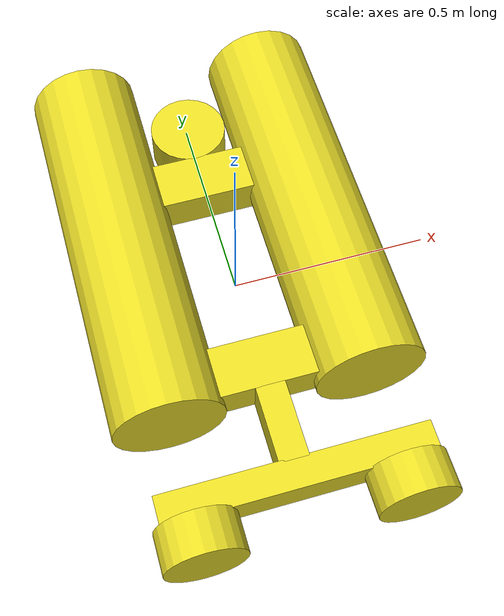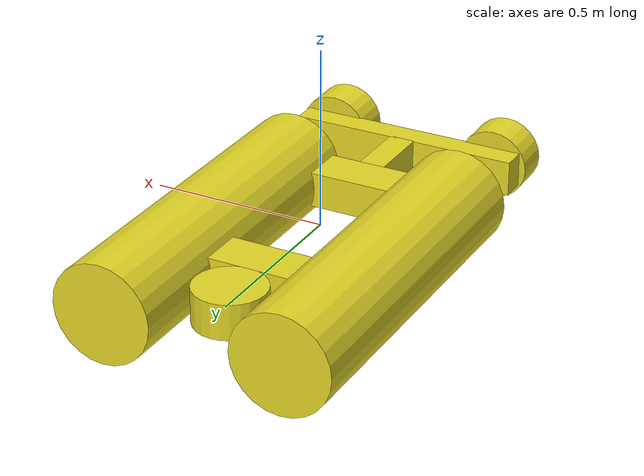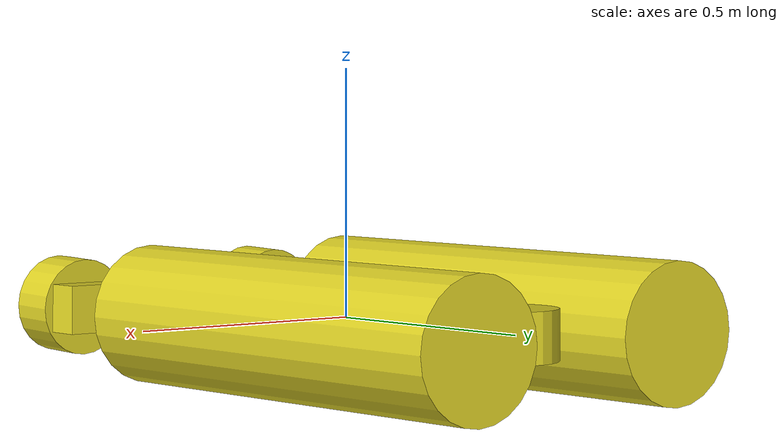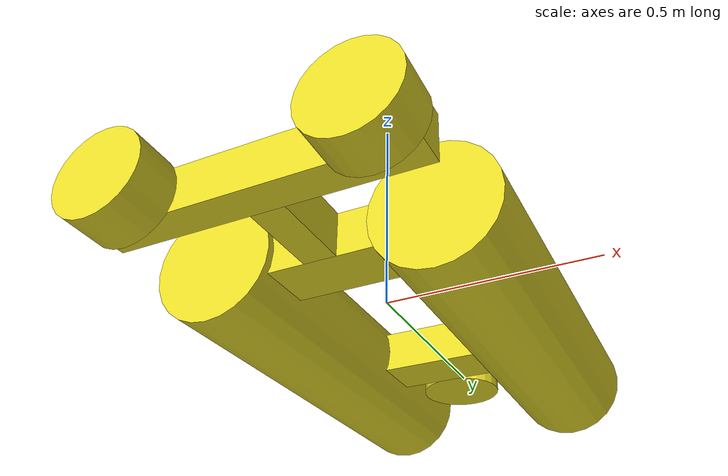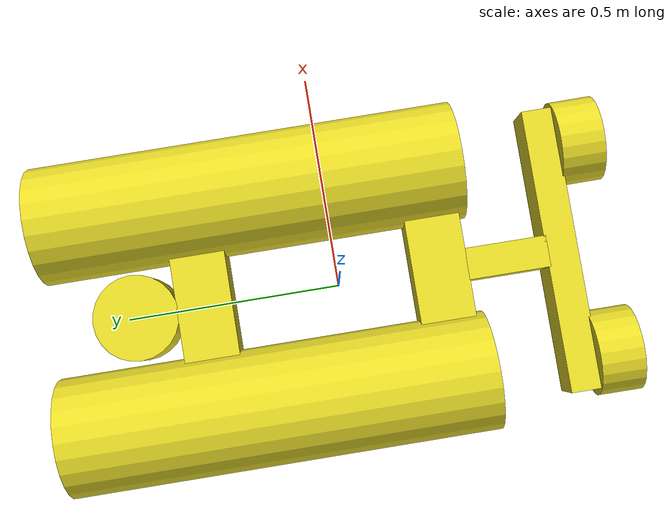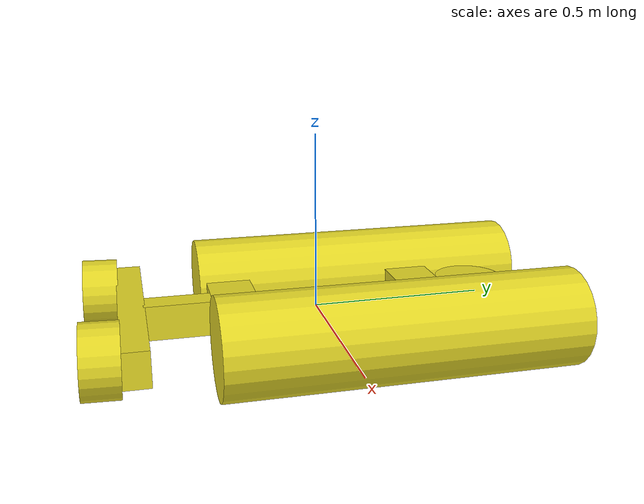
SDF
<?xml version='1.0'?>
<sdf version='1.7'>
  <model name='AUV_mk4'>
    <link name='link_0'>
      <inertial>
        <mass>61.5752</mass>
        <inertia>
          <ixx>5.43299</ixx>
          <ixy>0</ixy>
          <ixz>0</ixz>
          <iyy>5.43299</iyy>
          <iyz>0</iyz>
          <izz>0.603437</izz>
        </inertia>
        <pose>0 0 0 0 -0 0</pose>
      </inertial>
      <pose>0.251383 0.178692 0 1.57 -0 0</pose>
      <gravity>1</gravity>
      <self_collide>0</self_collide>
      <kinematic>0</kinematic>
      <enable_wind>0</enable_wind>
      <visual name='visual'>
        <pose>0 0 0 0 -0 0</pose>
        <geometry>
          <cylinder>
            <radius>0.14</radius>
            <length>1</length>
          </cylinder>
        </geometry>
        <material>
          <script>
            <uri>file://media/materials/scripts/gazebo.material</uri>
            <name>Gazebo/Yellow</name>
          </script>
          <shader type='pixel'>
            <normal_map>__default__</normal_map>
          </shader>
          <ambient>1 1 0 1</ambient>
          <diffuse>1 1 0 1</diffuse>
          <emissive>0 0 0 1</emissive>
        </material>
        <transparency>0</transparency>
        <cast_shadows>1</cast_shadows>
      </visual>
      <collision name='collision'>
        <laser_retro>0</laser_retro>
        <max_contacts>10</max_contacts>
        <pose>0 0 0 0 -0 0</pose>
        <geometry>
          <cylinder>
            <radius>0.14</radius>
            <length>1</length>
          </cylinder>
        </geometry>
        <surface>
          <friction>
            <ode>
              <mu>1</mu>
              <mu2>1</mu2>
              <fdir1>0 0 0</fdir1>
              <slip1>0</slip1>
              <slip2>0</slip2>
            </ode>
            <torsional>
              <coefficient>1</coefficient>
              <patch_radius>0</patch_radius>
              <surface_radius>0</surface_radius>
              <use_patch_radius>1</use_patch_radius>
              <ode>
                <slip>0</slip>
              </ode>
            </torsional>
          </friction>
          <bounce>
            <restitution_coefficient>0</restitution_coefficient>
            <threshold>1e+06</threshold>
          </bounce>
          <contact>
            <collide_without_contact>0</collide_without_contact>
            <collide_without_contact_bitmask>1</collide_without_contact_bitmask>
            <collide_bitmask>1</collide_bitmask>
            <ode>
              <soft_cfm>0</soft_cfm>
              <soft_erp>0.2</soft_erp>
              <kp>1e+13</kp>
              <kd>1</kd>
              <max_vel>0.01</max_vel>
              <min_depth>0</min_depth>
            </ode>
            <bullet>
              <split_impulse>1</split_impulse>
              <split_impulse_penetration_threshold>-0.01</split_impulse_penetration_threshold>
              <soft_cfm>0</soft_cfm>
              <soft_erp>0.2</soft_erp>
              <kp>1e+13</kp>
              <kd>1</kd>
            </bullet>
          </contact>
        </surface>
      </collision>
    </link>
    <link name='link_1'>
      <inertial>
        <mass>61.5752</mass>
        <inertia>
          <ixx>5.43299</ixx>
          <ixy>0</ixy>
          <ixz>0</ixz>
          <iyy>5.43299</iyy>
          <iyz>0</iyz>
          <izz>0.603437</izz>
        </inertia>
        <pose>0 0 0 0 -0 0</pose>
      </inertial>
      <pose>-0.251383 0.178692 0 1.57 -0 0</pose>
      <gravity>1</gravity>
      <self_collide>0</self_collide>
      <kinematic>0</kinematic>
      <enable_wind>0</enable_wind>
      <visual name='visual'>
        <pose>0 0 0 0 -0 0</pose>
        <geometry>
          <cylinder>
            <radius>0.14</radius>
            <length>1</length>
          </cylinder>
        </geometry>
        <material>
          <script>
            <uri>file://media/materials/scripts/gazebo.material</uri>
            <name>Gazebo/Yellow</name>
          </script>
          <shader type='pixel'>
            <normal_map>__default__</normal_map>
          </shader>
          <ambient>1 1 0 1</ambient>
          <diffuse>1 1 0 1</diffuse>
          <emissive>0 0 0 1</emissive>
        </material>
        <transparency>0</transparency>
        <cast_shadows>1</cast_shadows>
      </visual>
      <collision name='collision'>
        <laser_retro>0</laser_retro>
        <max_contacts>10</max_contacts>
        <pose>0 0 0 0 -0 0</pose>
        <geometry>
          <cylinder>
            <radius>0.14</radius>
            <length>1</length>
          </cylinder>
        </geometry>
        <surface>
          <friction>
            <ode>
              <mu>1</mu>
              <mu2>1</mu2>
              <fdir1>0 0 0</fdir1>
              <slip1>0</slip1>
              <slip2>0</slip2>
            </ode>
            <torsional>
              <coefficient>1</coefficient>
              <patch_radius>0</patch_radius>
              <surface_radius>0</surface_radius>
              <use_patch_radius>1</use_patch_radius>
              <ode>
                <slip>0</slip>
              </ode>
            </torsional>
          </friction>
          <bounce>
            <restitution_coefficient>0</restitution_coefficient>
            <threshold>1e+06</threshold>
          </bounce>
          <contact>
            <collide_without_contact>0</collide_without_contact>
            <collide_without_contact_bitmask>1</collide_without_contact_bitmask>
            <collide_bitmask>1</collide_bitmask>
            <ode>
              <soft_cfm>0</soft_cfm>
              <soft_erp>0.2</soft_erp>
              <kp>1e+13</kp>
              <kd>1</kd>
              <max_vel>0.01</max_vel>
              <min_depth>0</min_depth>
            </ode>
            <bullet>
              <split_impulse>1</split_impulse>
              <split_impulse_penetration_threshold>-0.01</split_impulse_penetration_threshold>
              <soft_cfm>0</soft_cfm>
              <soft_erp>0.2</soft_erp>
              <kp>1e+13</kp>
              <kd>1</kd>
            </bullet>
          </contact>
        </surface>
      </collision>
    </link>
    <link name='link_2'>
      <inertial>
        <mass>3.2227</mass>
        <inertia>
          <ixx>0.00714829</ixx>
          <ixy>0</ixy>
          <ixz>0</ixz>
          <iyy>0.0194705</iyy>
          <iyz>0</iyz>
          <izz>0.0212476</izz>
        </inertia>
        <pose>0 0 0 0 -0 0</pose>
      </inertial>
      <pose>0 0.314978 0 0 -0 0</pose>
      <gravity>1</gravity>
      <self_collide>0</self_collide>
      <kinematic>0</kinematic>
      <enable_wind>0</enable_wind>
      <visual name='visual'>
        <pose>0 0 0 0 -0 0</pose>
        <geometry>
          <box>
            <size>0.25 0.128908 0.1</size>
          </box>
        </geometry>
        <material>
          <script>
            <uri>file://media/materials/scripts/gazebo.material</uri>
            <name>Gazebo/Yellow</name>
          </script>
          <shader type='pixel'>
            <normal_map>__default__</normal_map>
          </shader>
          <ambient>1 1 0 1</ambient>
          <diffuse>1 1 0 1</diffuse>
          <emissive>0 0 0 1</emissive>
        </material>
        <transparency>0</transparency>
        <cast_shadows>1</cast_shadows>
      </visual>
      <collision name='collision'>
        <laser_retro>0</laser_retro>
        <max_contacts>10</max_contacts>
        <pose>0 0 0 0 -0 0</pose>
        <geometry>
          <box>
            <size>0.25 0.128908 0.1</size>
          </box>
        </geometry>
        <surface>
          <friction>
            <ode>
              <mu>1</mu>
              <mu2>1</mu2>
              <fdir1>0 0 0</fdir1>
              <slip1>0</slip1>
              <slip2>0</slip2>
            </ode>
            <torsional>
              <coefficient>1</coefficient>
              <patch_radius>0</patch_radius>
              <surface_radius>0</surface_radius>
              <use_patch_radius>1</use_patch_radius>
              <ode>
                <slip>0</slip>
              </ode>
            </torsional>
          </friction>
          <bounce>
            <restitution_coefficient>0</restitution_coefficient>
            <threshold>1e+06</threshold>
          </bounce>
          <contact>
            <collide_without_contact>0</collide_without_contact>
            <collide_without_contact_bitmask>1</collide_without_contact_bitmask>
            <collide_bitmask>1</collide_bitmask>
            <ode>
              <soft_cfm>0</soft_cfm>
              <soft_erp>0.2</soft_erp>
              <kp>1e+13</kp>
              <kd>1</kd>
              <max_vel>0.01</max_vel>
              <min_depth>0</min_depth>
            </ode>
            <bullet>
              <split_impulse>1</split_impulse>
              <split_impulse_penetration_threshold>-0.01</split_impulse_penetration_threshold>
              <soft_cfm>0</soft_cfm>
              <soft_erp>0.2</soft_erp>
              <kp>1e+13</kp>
              <kd>1</kd>
            </bullet>
          </contact>
        </surface>
      </collision>
    </link>
    <link name='link_3'>
      <inertial>
        <mass>3.14159</mass>
        <inertia>
          <ixx>0.010472</ixx>
          <ixy>0</ixy>
          <ixz>0</ixz>
          <iyy>0.010472</iyy>
          <iyz>0</iyz>
          <izz>0.015708</izz>
        </inertia>
        <pose>0 0 0 0 -0 0</pose>
      </inertial>
      <pose>0 0.475723 0 0 -0 0</pose>
      <gravity>1</gravity>
      <self_collide>0</self_collide>
      <kinematic>0</kinematic>
      <enable_wind>0</enable_wind>
      <visual name='visual'>
        <pose>0 0 0 0 -0 0</pose>
        <geometry>
          <cylinder>
            <radius>0.1</radius>
            <length>0.1</length>
          </cylinder>
        </geometry>
        <material>
          <script>
            <uri>file://media/materials/scripts/gazebo.material</uri>
            <name>Gazebo/Yellow</name>
          </script>
          <shader type='pixel'>
            <normal_map>__default__</normal_map>
          </shader>
          <ambient>1 1 0 1</ambient>
          <diffuse>1 1 0 1</diffuse>
          <emissive>0 0 0 1</emissive>
        </material>
        <transparency>0</transparency>
        <cast_shadows>1</cast_shadows>
      </visual>
      <collision name='collision'>
        <laser_retro>0</laser_retro>
        <max_contacts>10</max_contacts>
        <pose>0 0 0 0 -0 0</pose>
        <geometry>
          <cylinder>
            <radius>0.1</radius>
            <length>0.1</length>
          </cylinder>
        </geometry>
        <surface>
          <friction>
            <ode>
              <mu>1</mu>
              <mu2>1</mu2>
              <fdir1>0 0 0</fdir1>
              <slip1>0</slip1>
              <slip2>0</slip2>
            </ode>
            <torsional>
              <coefficient>1</coefficient>
              <patch_radius>0</patch_radius>
              <surface_radius>0</surface_radius>
              <use_patch_radius>1</use_patch_radius>
              <ode>
                <slip>0</slip>
              </ode>
            </torsional>
          </friction>
          <bounce>
            <restitution_coefficient>0</restitution_coefficient>
            <threshold>1e+06</threshold>
          </bounce>
          <contact>
            <collide_without_contact>0</collide_without_contact>
            <collide_without_contact_bitmask>1</collide_without_contact_bitmask>
            <collide_bitmask>1</collide_bitmask>
            <ode>
              <soft_cfm>0</soft_cfm>
              <soft_erp>0.2</soft_erp>
              <kp>1e+13</kp>
              <kd>1</kd>
              <max_vel>0.01</max_vel>
              <min_depth>0</min_depth>
            </ode>
            <bullet>
              <split_impulse>1</split_impulse>
              <split_impulse_penetration_threshold>-0.01</split_impulse_penetration_threshold>
              <soft_cfm>0</soft_cfm>
              <soft_erp>0.2</soft_erp>
              <kp>1e+13</kp>
              <kd>1</kd>
            </bullet>
          </contact>
        </surface>
      </collision>
    </link>
    <link name='link_3_clone'>
      <inertial>
        <mass>3.14159</mass>
        <inertia>
          <ixx>0.010472</ixx>
          <ixy>0</ixy>
          <ixz>0</ixz>
          <iyy>0.010472</iyy>
          <iyz>0</iyz>
          <izz>0.015708</izz>
        </inertia>
        <pose>0 0 0 0 -0 0</pose>
      </inertial>
      <pose>-0.251383 -0.609279 0 1.54 -0 0</pose>
      <gravity>1</gravity>
      <self_collide>0</self_collide>
      <kinematic>0</kinematic>
      <enable_wind>0</enable_wind>
      <visual name='visual'>
        <pose>0 0 0 0 -0 0</pose>
        <geometry>
          <cylinder>
            <radius>0.1</radius>
            <length>0.1</length>
          </cylinder>
        </geometry>
        <material>
          <script>
            <uri>file://media/materials/scripts/gazebo.material</uri>
            <name>Gazebo/Yellow</name>
          </script>
          <shader type='pixel'>
            <normal_map>__default__</normal_map>
          </shader>
          <ambient>1 1 0 1</ambient>
          <diffuse>1 1 0 1</diffuse>
          <emissive>0 0 0 1</emissive>
        </material>
        <transparency>0</transparency>
        <cast_shadows>1</cast_shadows>
      </visual>
      <collision name='collision'>
        <laser_retro>0</laser_retro>
        <max_contacts>10</max_contacts>
        <pose>0 0 0 0 -0 0</pose>
        <geometry>
          <cylinder>
            <radius>0.1</radius>
            <length>0.1</length>
          </cylinder>
        </geometry>
        <surface>
          <friction>
            <ode>
              <mu>1</mu>
              <mu2>1</mu2>
              <fdir1>0 0 0</fdir1>
              <slip1>0</slip1>
              <slip2>0</slip2>
            </ode>
            <torsional>
              <coefficient>1</coefficient>
              <patch_radius>0</patch_radius>
              <surface_radius>0</surface_radius>
              <use_patch_radius>1</use_patch_radius>
              <ode>
                <slip>0</slip>
              </ode>
            </torsional>
          </friction>
          <bounce>
            <restitution_coefficient>0</restitution_coefficient>
            <threshold>1e+06</threshold>
          </bounce>
          <contact>
            <collide_without_contact>0</collide_without_contact>
            <collide_without_contact_bitmask>1</collide_without_contact_bitmask>
            <collide_bitmask>1</collide_bitmask>
            <ode>
              <soft_cfm>0</soft_cfm>
              <soft_erp>0.2</soft_erp>
              <kp>1e+13</kp>
              <kd>1</kd>
              <max_vel>0.01</max_vel>
              <min_depth>0</min_depth>
            </ode>
            <bullet>
              <split_impulse>1</split_impulse>
              <split_impulse_penetration_threshold>-0.01</split_impulse_penetration_threshold>
              <soft_cfm>0</soft_cfm>
              <soft_erp>0.2</soft_erp>
              <kp>1e+13</kp>
              <kd>1</kd>
            </bullet>
          </contact>
        </surface>
      </collision>
    </link>
    <link name='link_3_clone_clone'>
      <inertial>
        <mass>3.14159</mass>
        <inertia>
          <ixx>0.010472</ixx>
          <ixy>0</ixy>
          <ixz>0</ixz>
          <iyy>0.010472</iyy>
          <iyz>0</iyz>
          <izz>0.015708</izz>
        </inertia>
        <pose>0 0 0 0 -0 0</pose>
      </inertial>
      <pose>0.251383 -0.609279 0 1.5392 -0 0</pose>
      <gravity>1</gravity>
      <self_collide>0</self_collide>
      <kinematic>0</kinematic>
      <enable_wind>0</enable_wind>
      <visual name='visual'>
        <pose>0 0 0 0 -0 0</pose>
        <geometry>
          <cylinder>
            <radius>0.1</radius>
            <length>0.1</length>
          </cylinder>
        </geometry>
        <material>
          <script>
            <uri>file://media/materials/scripts/gazebo.material</uri>
            <name>Gazebo/Yellow</name>
          </script>
          <shader type='pixel'>
            <normal_map>__default__</normal_map>
          </shader>
          <ambient>1 1 0 1</ambient>
          <diffuse>1 1 0 1</diffuse>
          <emissive>0 0 0 1</emissive>
        </material>
        <transparency>0</transparency>
        <cast_shadows>1</cast_shadows>
      </visual>
      <collision name='collision'>
        <laser_retro>0</laser_retro>
        <max_contacts>10</max_contacts>
        <pose>0 0 0 0 -0 0</pose>
        <geometry>
          <cylinder>
            <radius>0.1</radius>
            <length>0.1</length>
          </cylinder>
        </geometry>
        <surface>
          <friction>
            <ode>
              <mu>1</mu>
              <mu2>1</mu2>
              <fdir1>0 0 0</fdir1>
              <slip1>0</slip1>
              <slip2>0</slip2>
            </ode>
            <torsional>
              <coefficient>1</coefficient>
              <patch_radius>0</patch_radius>
              <surface_radius>0</surface_radius>
              <use_patch_radius>1</use_patch_radius>
              <ode>
                <slip>0</slip>
              </ode>
            </torsional>
          </friction>
          <bounce>
            <restitution_coefficient>0</restitution_coefficient>
            <threshold>1e+06</threshold>
          </bounce>
          <contact>
            <collide_without_contact>0</collide_without_contact>
            <collide_without_contact_bitmask>1</collide_without_contact_bitmask>
            <collide_bitmask>1</collide_bitmask>
            <ode>
              <soft_cfm>0</soft_cfm>
              <soft_erp>0.2</soft_erp>
              <kp>1e+13</kp>
              <kd>1</kd>
              <max_vel>0.01</max_vel>
              <min_depth>0</min_depth>
            </ode>
            <bullet>
              <split_impulse>1</split_impulse>
              <split_impulse_penetration_threshold>-0.01</split_impulse_penetration_threshold>
              <soft_cfm>0</soft_cfm>
              <soft_erp>0.2</soft_erp>
              <kp>1e+13</kp>
              <kd>1</kd>
            </bullet>
          </contact>
        </surface>
      </collision>
    </link>
    <link name='link_4'>
      <inertial>
        <mass>3.2227</mass>
        <inertia>
          <ixx>0.00714829</ixx>
          <ixy>0</ixy>
          <ixz>0</ixz>
          <iyy>0.0194705</iyy>
          <iyz>0</iyz>
          <izz>0.0212476</izz>
        </inertia>
        <pose>0 0 0 0 -0 0</pose>
      </inertial>
      <pose>0 -0.238292 0 0 -0 0</pose>
      <gravity>1</gravity>
      <self_collide>0</self_collide>
      <kinematic>0</kinematic>
      <enable_wind>0</enable_wind>
      <visual name='visual'>
        <pose>0 0 0 0 -0 0</pose>
        <geometry>
          <box>
            <size>0.25 0.128908 0.1</size>
          </box>
        </geometry>
        <material>
          <script>
            <uri>file://media/materials/scripts/gazebo.material</uri>
            <name>Gazebo/Yellow</name>
          </script>
          <shader type='pixel'>
            <normal_map>__default__</normal_map>
          </shader>
          <ambient>1 1 0 1</ambient>
          <diffuse>1 1 0 1</diffuse>
          <emissive>0 0 0 1</emissive>
        </material>
        <transparency>0</transparency>
        <cast_shadows>1</cast_shadows>
      </visual>
      <collision name='collision'>
        <laser_retro>0</laser_retro>
        <max_contacts>10</max_contacts>
        <pose>0 0 0 0 -0 0</pose>
        <geometry>
          <box>
            <size>0.25 0.128908 0.1</size>
          </box>
        </geometry>
        <surface>
          <friction>
            <ode>
              <mu>1</mu>
              <mu2>1</mu2>
              <fdir1>0 0 0</fdir1>
              <slip1>0</slip1>
              <slip2>0</slip2>
            </ode>
            <torsional>
              <coefficient>1</coefficient>
              <patch_radius>0</patch_radius>
              <surface_radius>0</surface_radius>
              <use_patch_radius>1</use_patch_radius>
              <ode>
                <slip>0</slip>
              </ode>
            </torsional>
          </friction>
          <bounce>
            <restitution_coefficient>0</restitution_coefficient>
            <threshold>1e+06</threshold>
          </bounce>
          <contact>
            <collide_without_contact>0</collide_without_contact>
            <collide_without_contact_bitmask>1</collide_without_contact_bitmask>
            <collide_bitmask>1</collide_bitmask>
            <ode>
              <soft_cfm>0</soft_cfm>
              <soft_erp>0.2</soft_erp>
              <kp>1e+13</kp>
              <kd>1</kd>
              <max_vel>0.01</max_vel>
              <min_depth>0</min_depth>
            </ode>
            <bullet>
              <split_impulse>1</split_impulse>
              <split_impulse_penetration_threshold>-0.01</split_impulse_penetration_threshold>
              <soft_cfm>0</soft_cfm>
              <soft_erp>0.2</soft_erp>
              <kp>1e+13</kp>
              <kd>1</kd>
            </bullet>
          </contact>
        </surface>
      </collision>
    </link>
    <link name='link_4_clone'>
      <inertial>
        <mass>1.40862</mass>
        <inertia>
          <ixx>0.00181087</ixx>
          <ixy>0</ixy>
          <ixz>0</ixz>
          <iyy>0.00546576</iyy>
          <iyz>0</iyz>
          <izz>0.00492894</izz>
        </inertia>
        <pose>0 0 0 0 -0 0</pose>
      </inertial>
      <pose>0 -0.397401 0 0 -0 1.57</pose>
      <gravity>1</gravity>
      <self_collide>0</self_collide>
      <kinematic>0</kinematic>
      <enable_wind>0</enable_wind>
      <visual name='visual'>
        <pose>0 0 0 0 -0 0</pose>
        <geometry>
          <box>
            <size>0.191214 0.073667 0.1</size>
          </box>
        </geometry>
        <material>
          <script>
            <uri>file://media/materials/scripts/gazebo.material</uri>
            <name>Gazebo/Yellow</name>
          </script>
          <shader type='pixel'>
            <normal_map>__default__</normal_map>
          </shader>
          <ambient>1 1 0 1</ambient>
          <diffuse>1 1 0 1</diffuse>
          <emissive>0 0 0 1</emissive>
        </material>
        <transparency>0</transparency>
        <cast_shadows>1</cast_shadows>
      </visual>
      <collision name='collision'>
        <laser_retro>0</laser_retro>
        <max_contacts>10</max_contacts>
        <pose>0 0 0 0 -0 0</pose>
        <geometry>
          <box>
            <size>0.191214 0.073667 0.1</size>
          </box>
        </geometry>
        <surface>
          <friction>
            <ode>
              <mu>1</mu>
              <mu2>1</mu2>
              <fdir1>0 0 0</fdir1>
              <slip1>0</slip1>
              <slip2>0</slip2>
            </ode>
            <torsional>
              <coefficient>1</coefficient>
              <patch_radius>0</patch_radius>
              <surface_radius>0</surface_radius>
              <use_patch_radius>1</use_patch_radius>
              <ode>
                <slip>0</slip>
              </ode>
            </torsional>
          </friction>
          <bounce>
            <restitution_coefficient>0</restitution_coefficient>
            <threshold>1e+06</threshold>
          </bounce>
          <contact>
            <collide_without_contact>0</collide_without_contact>
            <collide_without_contact_bitmask>1</collide_without_contact_bitmask>
            <collide_bitmask>1</collide_bitmask>
            <ode>
              <soft_cfm>0</soft_cfm>
              <soft_erp>0.2</soft_erp>
              <kp>1e+13</kp>
              <kd>1</kd>
              <max_vel>0.01</max_vel>
              <min_depth>0</min_depth>
            </ode>
            <bullet>
              <split_impulse>1</split_impulse>
              <split_impulse_penetration_threshold>-0.01</split_impulse_penetration_threshold>
              <soft_cfm>0</soft_cfm>
              <soft_erp>0.2</soft_erp>
              <kp>1e+13</kp>
              <kd>1</kd>
            </bullet>
          </contact>
        </surface>
      </collision>
    </link>
    <link name='link_4_clone_0'>
      <inertial>
        <mass>4.89023</mass>
        <inertia>
          <ixx>0.00628673</ixx>
          <ixy>0</ixy>
          <ixz>0</ixz>
          <iyy>0.183656</iyy>
          <iyz>0</iyz>
          <izz>0.181793</izz>
        </inertia>
        <pose>0 0 0 0 -0 0</pose>
      </inertial>
      <pose>0 -0.525087 0 0 -0 0</pose>
      <gravity>1</gravity>
      <self_collide>0</self_collide>
      <kinematic>0</kinematic>
      <enable_wind>0</enable_wind>
      <visual name='visual'>
        <pose>0 0 0 0 -0 0</pose>
        <geometry>
          <box>
            <size>0.663829 0.073667 0.1</size>
          </box>
        </geometry>
        <material>
          <script>
            <uri>file://media/materials/scripts/gazebo.material</uri>
            <name>Gazebo/Yellow</name>
          </script>
          <shader type='pixel'>
            <normal_map>__default__</normal_map>
          </shader>
          <ambient>1 1 0 1</ambient>
          <diffuse>1 1 0 1</diffuse>
          <emissive>0 0 0 1</emissive>
        </material>
        <transparency>0</transparency>
        <cast_shadows>1</cast_shadows>
      </visual>
      <collision name='collision'>
        <laser_retro>0</laser_retro>
        <max_contacts>10</max_contacts>
        <pose>0 0 0 0 -0 0</pose>
        <geometry>
          <box>
            <size>0.663829 0.073667 0.1</size>
          </box>
        </geometry>
        <surface>
          <friction>
            <ode>
              <mu>1</mu>
              <mu2>1</mu2>
              <fdir1>0 0 0</fdir1>
              <slip1>0</slip1>
              <slip2>0</slip2>
            </ode>
            <torsional>
              <coefficient>1</coefficient>
              <patch_radius>0</patch_radius>
              <surface_radius>0</surface_radius>
              <use_patch_radius>1</use_patch_radius>
              <ode>
                <slip>0</slip>
              </ode>
            </torsional>
          </friction>
          <bounce>
            <restitution_coefficient>0</restitution_coefficient>
            <threshold>1e+06</threshold>
          </bounce>
          <contact>
            <collide_without_contact>0</collide_without_contact>
            <collide_without_contact_bitmask>1</collide_without_contact_bitmask>
            <collide_bitmask>1</collide_bitmask>
            <ode>
              <soft_cfm>0</soft_cfm>
              <soft_erp>0.2</soft_erp>
              <kp>1e+13</kp>
              <kd>1</kd>
              <max_vel>0.01</max_vel>
              <min_depth>0</min_depth>
            </ode>
            <bullet>
              <split_impulse>1</split_impulse>
              <split_impulse_penetration_threshold>-0.01</split_impulse_penetration_threshold>
              <soft_cfm>0</soft_cfm>
              <soft_erp>0.2</soft_erp>
              <kp>1e+13</kp>
              <kd>1</kd>
            </bullet>
          </contact>
        </surface>
      </collision>
    </link>
    <joint name='link_0_JOINT_3' type='fixed'>
      <parent>link_0</parent>
      <child>link_2</child>
      <pose>0 0 0 0 -0 0</pose>
      <physics>
        <ode>
          <limit>
            <cfm>0</cfm>
            <erp>0.2</erp>
          </limit>
          <suspension>
            <cfm>0</cfm>
            <erp>0.2</erp>
          </suspension>
        </ode>
      </physics>
    </joint>
    <joint name='link_0_JOINT_6' type='fixed'>
      <parent>link_0</parent>
      <child>link_4</child>
      <pose>0 0 0 0 -0 0</pose>
      <physics>
        <ode>
          <limit>
            <cfm>0</cfm>
            <erp>0.2</erp>
          </limit>
          <suspension>
            <cfm>0</cfm>
            <erp>0.2</erp>
          </suspension>
        </ode>
      </physics>
    </joint>
    <joint name='link_1_JOINT_2' type='fixed'>
      <parent>link_1</parent>
      <child>link_2</child>
      <pose>0 0 0 0 -0 0</pose>
      <physics>
        <ode>
          <limit>
            <cfm>0</cfm>
            <erp>0.2</erp>
          </limit>
          <suspension>
            <cfm>0</cfm>
            <erp>0.2</erp>
          </suspension>
        </ode>
      </physics>
    </joint>
    <joint name='link_1_JOINT_5' type='fixed'>
      <parent>link_1</parent>
      <child>link_4</child>
      <pose>0 0 0 0 -0 0</pose>
      <physics>
        <ode>
          <limit>
            <cfm>0</cfm>
            <erp>0.2</erp>
          </limit>
          <suspension>
            <cfm>0</cfm>
            <erp>0.2</erp>
          </suspension>
        </ode>
      </physics>
    </joint>
    <joint name='link_2_JOINT_4' type='fixed'>
      <parent>link_2</parent>
      <child>link_3</child>
      <pose>0 0 0 0 -0 0</pose>
      <physics>
        <ode>
          <limit>
            <cfm>0</cfm>
            <erp>0.2</erp>
          </limit>
          <suspension>
            <cfm>0</cfm>
            <erp>0.2</erp>
          </suspension>
        </ode>
      </physics>
    </joint>
    <joint name='link_4_JOINT_9' type='fixed'>
      <parent>link_4</parent>
      <child>link_4_clone</child>
      <pose>0 0 0 0 -0 0</pose>
      <physics>
        <ode>
          <limit>
            <cfm>0</cfm>
            <erp>0.2</erp>
          </limit>
          <suspension>
            <cfm>0</cfm>
            <erp>0.2</erp>
          </suspension>
        </ode>
      </physics>
    </joint>
    <joint name='link_4_clone_0_JOINT_10' type='fixed'>
      <parent>link_4_clone_0</parent>
      <child>link_3_clone</child>
      <pose>0 0 0 0 -0 0</pose>
      <physics>
        <ode>
          <limit>
            <cfm>0</cfm>
            <erp>0.2</erp>
          </limit>
          <suspension>
            <cfm>0</cfm>
            <erp>0.2</erp>
          </suspension>
        </ode>
      </physics>
    </joint>
    <joint name='link_4_clone_0_JOINT_11' type='fixed'>
      <parent>link_4_clone_0</parent>
      <child>link_3_clone_clone</child>
      <pose>0 0 0 0 -0 0</pose>
      <physics>
        <ode>
          <limit>
            <cfm>0</cfm>
            <erp>0.2</erp>
          </limit>
          <suspension>
            <cfm>0</cfm>
            <erp>0.2</erp>
          </suspension>
        </ode>
      </physics>
    </joint>
    <joint name='link_4_clone_JOINT_8' type='fixed'>
      <parent>link_4_clone</parent>
      <child>link_4_clone_0</child>
      <pose>0 0 0 0 -0 0</pose>
      <physics>
        <ode>
          <limit>
            <cfm>0</cfm>
            <erp>0.2</erp>
          </limit>
          <suspension>
            <cfm>0</cfm>
            <erp>0.2</erp>
          </suspension>
        </ode>
      </physics>
    </joint>
    <static>0</static>
    <allow_auto_disable>1</allow_auto_disable>

    <plugin name='buoyancy' filename='libBuoyancyPlugin.so'>
      <fluid_density>1000</fluid_density>
    </plugin>

  </model>
</sdf>
